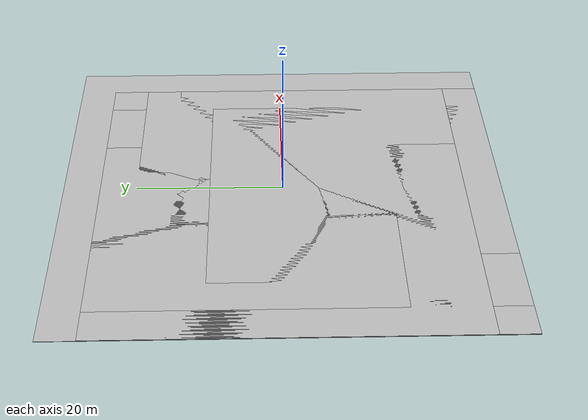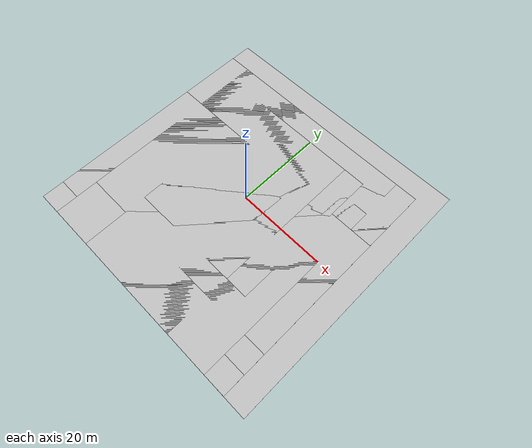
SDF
<sdf version="1.6">
 <world name="default">
  <plugin filename="gz-sim-physics-system" name="gz::sim::systems::Physics"/>
  <plugin filename="gz-sim-sensors-system" name="gz::sim::systems::Sensors">
   <render_engine>ogre2</render_engine>
  </plugin>
  <plugin filename="gz-sim-imu-system" name="gz::sim::systems::Imu"/>
  <plugin filename="gz-sim-user-commands-system" name="gz::sim::systems::UserCommands"/>
  <plugin filename="gz-sim-scene-broadcaster-system" name="gz::sim::systems::SceneBroadcaster"/>
  <plugin filename="gz-sim-navsat-system" name="gz::sim::systems::NavSat"/>
  <light type="directional" name="sun">
   <pose>0.0 0.0 1000 -0.35 -0.5 0</pose>
   <diffuse>0.8 0.8 0.8 1</diffuse>
   <specular>0.2 0.2 0.2 1</specular>
   <attenuation>
    <range>1000</range>
    <constant>0.9</constant>
    <linear>0.01</linear>
    <quadratic>0.001</quadratic>
   </attenuation>
   <direction>-0.5 0.1 -0.9</direction>
  </light>
  <gravity>0 0 -9.8</gravity>
  <magnetic_field>6e-06 2.3e-05 -4.2e-05</magnetic_field>
  <atmosphere type="adiabatic"/>
  <physics name="default_physics" default="1" type="ignored">
   <max_step_size>0.005</max_step_size>
   <real_time_factor>1</real_time_factor>
   <real_time_update_rate>200</real_time_update_rate>
  </physics>
  <scene>
   <ambient>0.9 0.9 0.9 1</ambient>
   <sky><clouds><speed>8</speed></clouds></sky>
   <grid>false</grid>
   <background>0.7 0.7 0.7 1</background>
   <shadows>1</shadows>
  </scene>
  <spherical_coordinates>
   <surface_model>EARTH_WGS84</surface_model>
   <world_frame_orientation>ENU</world_frame_orientation>
   <latitude_deg>42.293575</latitude_deg>
   <longitude_deg>-71.264178</longitude_deg>
   <elevation>45</elevation>
   <heading_deg>0</heading_deg>
  </spherical_coordinates>
  <include>
   <uri>model://my_ground_plane</uri>
   <pose>0 0 0.03 0 0 0</pose>
   <name>ground_00</name>
   <static>true</static>
  </include>
  <include>
   <uri>model://my_ground_plane</uri>
   <pose>-5 0 0.03 0 0 0</pose>
   <name>ground_01</name>
   <static>true</static>
  </include>
  <include>
   <uri>model://my_ground_plane</uri>
   <pose>0 -5 0.03 0 0 0</pose>
   <name>ground_02</name>
   <static>true</static>
  </include>
  <include>
   <uri>model://my_ground_plane</uri>
   <pose>5 0 0.03 0 0 0</pose>
   <name>ground_03</name>
   <static>true</static>
  </include>
  <include>
   <uri>model://my_ground_plane</uri>
   <pose>0 5 0.03 0 0 0</pose>
   <name>ground_04</name>
   <static>true</static>
  </include>
  <include>
   <uri>model://my_ground_plane</uri>
   <pose>-5 -5 0.03 0 0 0</pose>
   <name>ground_05</name>
   <static>true</static>
  </include>
  <include>
   <uri>model://my_ground_plane</uri>
   <pose>5 -5 0.03 0 0 0</pose>
   <name>ground_06</name>
   <static>true</static>
  </include>
  <include>
   <uri>model://my_ground_plane</uri>
   <pose>-10 0 0.03 0 0 0</pose>
   <name>ground_07</name>
   <static>true</static>
  </include>
  <include>
   <uri>model://my_ground_plane</uri>
   <pose>5 5 0.03 0 0 0</pose>
   <name>ground_08</name>
   <static>true</static>
  </include>
  <include>
   <uri>model://my_ground_plane</uri>
   <pose>-10 5 0.03 0 0 0</pose>
   <name>ground_09</name>
   <static>true</static>
  </include>
  <include>
   <uri>model://my_ground_plane</uri>
   <pose>-5 5 0.03 0 0 0</pose>
   <name>ground_10</name>
   <static>true</static>
  </include>
  <include>
   <uri>model://my_ground_plane</uri>
   <pose>-10 -10 0.03 0 0 0</pose>
   <name>ground_11</name>
   <static>true</static>
  </include>
  <include>
   <uri>model://my_ground_plane</uri>
   <pose>-5 -10 0.03 0 0 0</pose>
   <name>ground_12</name>
   <static>true</static>
  </include>
  <include>
   <uri>model://my_ground_plane</uri>
   <pose>0 -10 0.03 0 0 0</pose>
   <name>ground_13</name>
   <static>true</static>
  </include>
  <include>
   <uri>model://my_ground_plane</uri>
   <pose>5 -10 0.03 0 0 0</pose>
   <name>ground_14</name>
   <static>true</static>
  </include>
  <include>
   <uri>model://my_ground_plane</uri>
   <pose>-10 -5 0.03 0 0 0</pose>
   <name>ground_15</name>
   <static>true</static>
  </include>
  <include><uri>model://my_grass_plane</uri><pose>0 0 -0.05 0 0 0</pose><static>true</static></include>
 </world>
</sdf>

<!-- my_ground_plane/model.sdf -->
<sdf version="1.4">
<model name="my_ground_plane">
  <static>true</static>
    <link name="link">
      <collision name='collision'>
        <geometry>
          <plane>
            <normal>0 0 1</normal>
            <size>150 150</size>
          </plane>
        </geometry>
        <surface>
          <friction>
            <ode>
              <mu>100</mu>
              <mu2>100</mu2>
              <slip1>0.0</slip1>
              <slip2>0.0</slip2>
              <fdir1>0 0 0</fdir1>
            </ode>
          </friction>
          <bounce>
            <restitution_coefficient>0</restitution_coefficient>
            <threshold>1e+06</threshold>
          </bounce>
          <contact>
            <ode>
              <kp>100000000.0</kp>
              <kd>10000.0</kd>
              <max_vel>0.01</max_vel>
              <min_depth>0.0001</min_depth>
            </ode>
          </contact>
        </surface>
        <max_contacts>10</max_contacts>
      </collision>
      <visual name="visual">
        <cast_shadows>false</cast_shadows>
        <geometry>
          <plane>
            <normal>0 0 1</normal>
            <size>40 40</size>
          </plane>
        </geometry>
      </visual>
    </link>
  </model>
</sdf>

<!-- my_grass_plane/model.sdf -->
<sdf version="1.4">
   <model name="my_grass_plane">
      <static>true</static>
      <link name="link">
         <collision name="collision">
            <geometry>
               <plane>
                  <normal>0 0 1</normal>
                  <size>60 60</size>
               </plane>
            </geometry>
            <surface>
               <friction>
                  <ode>
                     <mu>100</mu>
                     <mu2>50</mu2>
                  </ode>
               </friction>
            </surface>
         </collision>
         <visual name="visual">
            <cast_shadows>false</cast_shadows>
            <geometry>
               <plane>
                  <normal>0 0 1</normal>
                  <size>60 60</size>
               </plane>
            </geometry>
            <material>
               <script>
                  <uri>model://my_grass_plane/materials/scripts</uri>
                  <uri>model://my_grass_plane/materials/textures/</uri>
                  <name>MyGrassPlane/Image</name>
               </script>
            </material>
         </visual>
      </link>
   </model>
</sdf>
